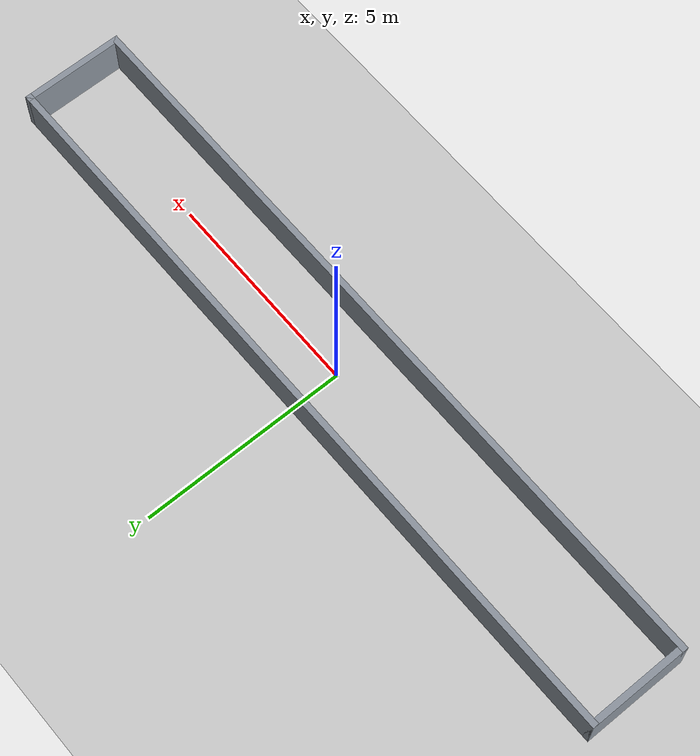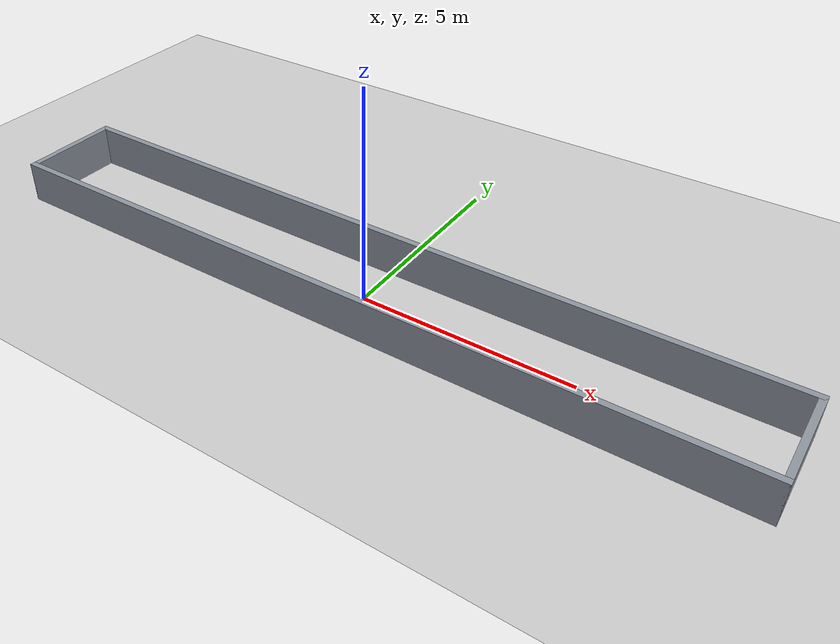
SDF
<?xml version='1.0'?>
<sdf version='1.6'>
  <world name='arena'>

    <physics type='ode'>
      <real_time_update_rate>1000.0</real_time_update_rate>
      <max_step_size>0.001</max_step_size>
      <real_time_factor>1</real_time_factor>
      <ode>
        <solver>
          <type>quick</type>
          <iters>150</iters>
          <precon_iters>0</precon_iters>
          <sor>1.400000</sor>
          <use_dynamic_moi_rescaling>1</use_dynamic_moi_rescaling>
        </solver>
        <constraints>
          <cfm>0.00001</cfm>
          <erp>0.2</erp>
          <contact_max_correcting_vel>2000.000000</contact_max_correcting_vel>
          <contact_surface_layer>0.01000</contact_surface_layer>
        </constraints>
      </ode>
    </physics>

    <include><uri>model://sun</uri></include>
    <include><uri>model://ground_plane</uri></include>

    <plugin name='gazebo_ros_state' filename='libgazebo_ros_state.so'>
      <ros>
        <namespace>/gazebo</namespace>
      </ros>
      <update_rate>20</update_rate>
    </plugin>

    <!-- shadows off: shadow mapping is re-rendered every frame in gzclient and buys
         nothing for a lidar-driven test. -->
    <scene>
      <ambient>0.6 0.6 0.6 1</ambient>
      <background>0.7 0.75 0.8 1</background>
      <shadows>false</shadows>
    </scene>

    <model name='obstacle_0'>
      <static>true</static>
      <pose>0.0000 1.1750 0.5000 0 0 0</pose>
      <link name='link'>
        <collision name='collision'>
          <geometry><box><size>18.3000 0.1500 1.0000</size></box></geometry>
        </collision>
        <visual name='visual'>
          <geometry><box><size>18.3000 0.1500 1.0000</size></box></geometry>
          <material>
            <ambient>0.42 0.45 0.5 1</ambient>
            <diffuse>0.55 0.58 0.62 1</diffuse>
          </material>
        </visual>
      </link>
    </model>
    <model name='obstacle_1'>
      <static>true</static>
      <pose>0.0000 -1.1750 0.5000 0 0 0</pose>
      <link name='link'>
        <collision name='collision'>
          <geometry><box><size>18.3000 0.1500 1.0000</size></box></geometry>
        </collision>
        <visual name='visual'>
          <geometry><box><size>18.3000 0.1500 1.0000</size></box></geometry>
          <material>
            <ambient>0.42 0.45 0.5 1</ambient>
            <diffuse>0.55 0.58 0.62 1</diffuse>
          </material>
        </visual>
      </link>
    </model>
    <model name='obstacle_2'>
      <static>true</static>
      <pose>9.0750 0.0000 0.5000 0 0 0</pose>
      <link name='link'>
        <collision name='collision'>
          <geometry><box><size>0.1500 2.5000 1.0000</size></box></geometry>
        </collision>
        <visual name='visual'>
          <geometry><box><size>0.1500 2.5000 1.0000</size></box></geometry>
          <material>
            <ambient>0.42 0.45 0.5 1</ambient>
            <diffuse>0.55 0.58 0.62 1</diffuse>
          </material>
        </visual>
      </link>
    </model>
    <model name='obstacle_3'>
      <static>true</static>
      <pose>-9.0750 0.0000 0.5000 0 0 0</pose>
      <link name='link'>
        <collision name='collision'>
          <geometry><box><size>0.1500 2.5000 1.0000</size></box></geometry>
        </collision>
        <visual name='visual'>
          <geometry><box><size>0.1500 2.5000 1.0000</size></box></geometry>
          <material>
            <ambient>0.42 0.45 0.5 1</ambient>
            <diffuse>0.55 0.58 0.62 1</diffuse>
          </material>
        </visual>
      </link>
    </model>

  </world>
</sdf>
